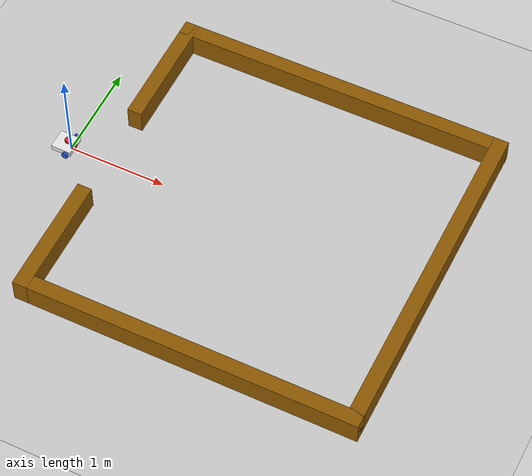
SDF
<sdf version="1.7">
 <world name="default">
  <light name="sun" type="directional">
   <pose>0 0 10 0 -0 0</pose>
   <diffuse>0.8 0.8 0.8 1</diffuse>
   <specular>0.2 0.2 0.2 1</specular>
   <attenuation>
    <range>1000</range>
    <constant>0.9</constant>
    <linear>0.01</linear>
    <quadratic>0.001</quadratic>
   </attenuation>
   <direction>-0.5 0.1 -0.9</direction>
   <spot><inner_angle>0</inner_angle><outer_angle>0</outer_angle><falloff>0</falloff></spot>
  </light>
  <model name="ground_plane">
   <static>1</static>
   <link name="link">
    <collision name="collision">
     <geometry><plane><normal>0 0 1</normal><size>100 100</size></plane></geometry>
     <surface><friction><ode><mu>100</mu><mu2>50</mu2></ode></friction></surface>
    </collision>
    <visual name="visual">
     <cast_shadows>0</cast_shadows>
     <geometry><plane><normal>0 0 1</normal><size>100 100</size></plane></geometry>
     <material>
      <script><uri>file://media/materials/scripts/gazebo.material</uri><name>Gazebo/Grey</name></script>
     </material>
    </visual>
   </link>
  </model>
  <gravity>0 0 -9.8</gravity>
  <magnetic_field>6e-06 2.3e-05 -4.2e-05</magnetic_field>
  <atmosphere type="adiabatic"/>
  <physics type="ode">
   <max_step_size>0.001</max_step_size>
   <real_time_factor>1</real_time_factor>
   <real_time_update_rate>1000</real_time_update_rate>
  </physics>
  <scene><ambient>0.4 0.4 0.4 1</ambient><background>0.7 0.7 0.7 1</background><shadows>1</shadows></scene>
  <spherical_coordinates>
   <surface_model>EARTH_WGS84</surface_model>
   <latitude_deg>0</latitude_deg>
   <longitude_deg>0</longitude_deg>
   <elevation>0</elevation>
   <heading_deg>0</heading_deg>
  </spherical_coordinates>
  <model name="my_bot">
   <link name="base_link">
    <inertial>
     <pose>-0.033021 0 0.067536 0 -0 0</pose>
     <mass>0.7</mass>
     <inertia>
      <ixx>0.00531008</ixx>
      <ixy>0</ixy>
      <ixz>-0.000834607</ixz>
      <iyy>0.006723</iyy>
      <iyz>0</iyz>
      <izz>0.00898587</izz>
     </inertia>
    </inertial>
    <collision name="base_link_fixed_joint_lump__chassis_collision">
     <pose>-0.0584 0 0.02725 0 -0 0</pose>
     <geometry><box><size>0.208 0.208 0.0545</size></box></geometry>
    </collision>
    <collision name="base_link_fixed_joint_lump__castor_wheel_collision_1">
     <pose>-0.1424 0 0 0 -0 0</pose>
     <geometry><sphere><radius>0.0171</radius></sphere></geometry>
     <surface><friction><ode><mu>0.001</mu><mu2>0.001</mu2></ode></friction></surface>
    </collision>
    <collision name="base_link_fixed_joint_lump__laser_frame_collision_2">
     <pose>-0.02675 0 0.09775 0 -0 3.14159</pose>
     <geometry><cylinder><length>0.0245</length><radius>0.035</radius></cylinder></geometry>
    </collision>
    <visual name="base_link_fixed_joint_lump__chassis_visual">
     <pose>-0.0584 0 0.02725 0 -0 0</pose>
     <geometry><box><size>0.208 0.208 0.0545</size></box></geometry>
     <material>
      <script><name>Gazebo/White</name><uri>file://media/materials/scripts/gazebo.material</uri></script>
     </material>
    </visual>
    <visual name="base_link_fixed_joint_lump__camera_link_visual_1">
     <pose>0.0556 0 0.052 0 -0 0</pose>
     <geometry><box><size>0.01 0.03 0.03</size></box></geometry>
     <material>
      <script><name>Gazebo/Red</name><uri>file://media/materials/scripts/gazebo.material</uri></script>
     </material>
    </visual>
    <visual name="base_link_fixed_joint_lump__castor_wheel_visual_2">
     <pose>-0.1424 0 0 0 -0 0</pose>
     <geometry><sphere><radius>0.0171</radius></sphere></geometry>
     <material>
      <script><name>Gazebo/Black</name><uri>file://media/materials/scripts/gazebo.material</uri></script>
     </material>
    </visual>
    <visual name="base_link_fixed_joint_lump__laser_frame_visual_3">
     <pose>-0.02675 0 0.09775 0 -0 3.14159</pose>
     <geometry><cylinder><length>0.0245</length><radius>0.035</radius></cylinder></geometry>
     <material>
      <script><name>Gazebo/Red</name><uri>file://media/materials/scripts/gazebo.material</uri></script>
     </material>
    </visual>
    <sensor name="camera" type="camera">
     <visualize>1</visualize>
     <update_rate>10</update_rate>
     <camera>
      <horizontal_fov>1.089</horizontal_fov>
      <image><format>R8G8B8</format><width>640</width><height>480</height></image>
      <clip><near>0.05</near><far>8</far></clip>
     </camera>
     <plugin name="camera_controller" filename="libgazebo_ros_camera.so">
      <frame_name>camera_link_optical</frame_name>
     </plugin>
     <pose>0.0556 0 0.052 0 -0 0</pose>
    </sensor>
    <sensor name="laser" type="ray">
     <visualize>0</visualize>
     <update_rate>10</update_rate>
     <ray>
      <scan>
       <horizontal>
        <samples>360</samples>
        <min_angle>-3.14</min_angle>
        <max_angle>3.14</max_angle>
        <resolution>1</resolution>
       </horizontal>
       <vertical><samples>1</samples><min_angle>0</min_angle><max_angle>0</max_angle></vertical>
      </scan>
      <range><min>0.3</min><max>12</max></range>
     </ray>
     <plugin name="laser_controller" filename="libgazebo_ros_ray_sensor.so">
      <ros><argument>~/out:=scan</argument></ros>
      <output_type>sensor_msgs/LaserScan</output_type>
      <frame_name>laser_frame</frame_name>
     </plugin>
     <pose>-0.02675 0 0.09775 0 -0 3.14159</pose>
    </sensor>
   </link>
   <joint name="left_wheel_joint" type="revolute">
    <pose relative_to="base_link">0 0.12315 0.019 -1.5708 0 0</pose>
    <parent>base_link</parent>
    <child>left_wheel</child>
    <axis>
     <xyz>0 0 1</xyz>
     <limit><lower>-1e+16</lower><upper>1e+16</upper></limit>
     <dynamics><spring_reference>0</spring_reference><spring_stiffness>0</spring_stiffness></dynamics>
    </axis>
   </joint>
   <link name="left_wheel">
    <pose relative_to="left_wheel_joint">0 0 0 0 -0 0</pose>
    <inertial>
     <mass>0.1</mass>
     <inertia>
      <ixx>3.42488e-05</ixx>
      <ixy>0</ixy>
      <ixz>0</ixz>
      <iyy>3.42488e-05</iyy>
      <iyz>0</iyz>
      <izz>5.66161e-05</izz>
     </inertia>
    </inertial>
    <collision name="left_wheel_collision">
     <geometry><cylinder><length>0.0267</length><radius>0.03365</radius></cylinder></geometry>
    </collision>
    <visual name="left_wheel_visual">
     <geometry><cylinder><length>0.0267</length><radius>0.03365</radius></cylinder></geometry>
     <material>
      <script><name>Gazebo/Blue</name><uri>file://media/materials/scripts/gazebo.material</uri></script>
     </material>
    </visual>
   </link>
   <joint name="right_wheel_joint" type="revolute">
    <pose relative_to="base_link">0 -0.12315 0.019 1.5708 -0 0</pose>
    <parent>base_link</parent>
    <child>right_wheel</child>
    <axis>
     <xyz>0 0 -1</xyz>
     <limit><lower>-1e+16</lower><upper>1e+16</upper></limit>
     <dynamics><spring_reference>0</spring_reference><spring_stiffness>0</spring_stiffness></dynamics>
    </axis>
   </joint>
   <link name="right_wheel">
    <pose relative_to="right_wheel_joint">0 0 0 0 -0 0</pose>
    <inertial>
     <mass>0.1</mass>
     <inertia>
      <ixx>3.42488e-05</ixx>
      <ixy>0</ixy>
      <ixz>0</ixz>
      <iyy>3.42488e-05</iyy>
      <iyz>0</iyz>
      <izz>5.66161e-05</izz>
     </inertia>
    </inertial>
    <collision name="right_wheel_collision">
     <geometry><cylinder><length>0.0267</length><radius>0.03365</radius></cylinder></geometry>
    </collision>
    <visual name="right_wheel_visual">
     <geometry><cylinder><length>0.0267</length><radius>0.03365</radius></cylinder></geometry>
     <material>
      <script><name>Gazebo/Blue</name><uri>file://media/materials/scripts/gazebo.material</uri></script>
     </material>
    </visual>
   </link>
   <static>0</static>
   <plugin name="diff_drive" filename="libgazebo_ros_diff_drive.so">
    <left_joint>left_wheel_joint</left_joint>
    <right_joint>right_wheel_joint</right_joint>
    <wheel_separation>0.2463</wheel_separation>
    <wheel_diameter>0.0673</wheel_diameter>
    <max_wheel_torque>200</max_wheel_torque>
    <max_wheel_acceleration>10.0</max_wheel_acceleration>
    <odometry_frame>odom</odometry_frame>
    <robot_base_frame>base_link</robot_base_frame>
    <publish_odom>1</publish_odom>
    <publish_odom_tf>1</publish_odom_tf>
    <publish_wheel_tf>1</publish_wheel_tf>
   </plugin>
   <pose>-0.006056 0.001837 0.014653 -5e-06 0.017182 -0.005254</pose>
  </model>
  <model name="Perimeter">
   <link name="Wall_4">
    <pose>-1.675 -0.6125 0 0 0 -1.5708</pose>
    <inertial>
     <mass>1</mass>
     <inertia><ixx>1</ixx><ixy>0</ixy><ixz>0</ixz><iyy>1</iyy><iyz>0</iyz><izz>1</izz></inertia>
    </inertial>
    <visual name="Wall_4_Visual">
     <geometry><box><size>3.5 0.15 0.5</size></box></geometry>
     <material>
      <script><uri>file://media/materials/scripts/gazebo.material</uri><name>Gazebo/Grey</name></script>
      <ambient>0.561 0.349 0.008 1</ambient>
      <shader type="pixel"><normal_map>__default__</normal_map></shader>
      <diffuse>0.7 0.7 0.7 1</diffuse>
      <specular>0.01 0.01 0.01 1</specular>
      <emissive>0 0 0 1</emissive>
     </material>
     <meta><layer>0</layer></meta>
    </visual>
    <collision name="Wall_4_Collision">
     <geometry><box><size>3.5 0.15 0.5</size></box></geometry>
     <surface>
      <friction>
       <ode><mu>1</mu><mu2>1</mu2><fdir1>0 0 0</fdir1><slip1>0</slip1><slip2>0</slip2></ode>
       <torsional>
        <coefficient>1</coefficient>
        <patch_radius>0</patch_radius>
        <surface_radius>0</surface_radius>
        <use_patch_radius>1</use_patch_radius>
        <ode><slip>0</slip></ode>
       </torsional>
      </friction>
      <bounce><restitution_coefficient>0</restitution_coefficient><threshold>1e+06</threshold></bounce>
      <contact>
       <collide_without_contact>0</collide_without_contact>
       <collide_without_contact_bitmask>1</collide_without_contact_bitmask>
       <collide_bitmask>1</collide_bitmask>
       <ode>
        <soft_cfm>0</soft_cfm>
        <soft_erp>0.2</soft_erp>
        <kp>1e+13</kp>
        <kd>1</kd>
        <max_vel>0.01</max_vel>
        <min_depth>0</min_depth>
       </ode>
       <bullet>
        <split_impulse>1</split_impulse>
        <split_impulse_penetration_threshold>-0.01</split_impulse_penetration_threshold>
        <soft_cfm>0</soft_cfm>
        <soft_erp>0.2</soft_erp>
        <kp>1e+13</kp>
        <kd>1</kd>
       </bullet>
      </contact>
     </surface>
    </collision>
   </link>
   <link name="Wall_5">
    <pose>0 -2.2875 0 0 -0 0</pose>
    <inertial>
     <mass>1</mass>
     <inertia><ixx>1</ixx><ixy>0</ixy><ixz>0</ixz><iyy>1</iyy><iyz>0</iyz><izz>1</izz></inertia>
    </inertial>
    <visual name="Wall_5_Visual">
     <geometry><box><size>3.5 0.15 0.5</size></box></geometry>
     <material>
      <script><uri>file://media/materials/scripts/gazebo.material</uri><name>Gazebo/Grey</name></script>
      <ambient>0.561 0.349 0.008 1</ambient>
      <shader type="pixel"><normal_map>__default__</normal_map></shader>
      <diffuse>0.7 0.7 0.7 1</diffuse>
      <specular>0.01 0.01 0.01 1</specular>
      <emissive>0 0 0 1</emissive>
     </material>
     <meta><layer>0</layer></meta>
    </visual>
    <collision name="Wall_5_Collision">
     <geometry><box><size>3.5 0.15 0.5</size></box></geometry>
     <surface>
      <friction>
       <ode><mu>1</mu><mu2>1</mu2><fdir1>0 0 0</fdir1><slip1>0</slip1><slip2>0</slip2></ode>
       <torsional>
        <coefficient>1</coefficient>
        <patch_radius>0</patch_radius>
        <surface_radius>0</surface_radius>
        <use_patch_radius>1</use_patch_radius>
        <ode><slip>0</slip></ode>
       </torsional>
      </friction>
      <bounce><restitution_coefficient>0</restitution_coefficient><threshold>1e+06</threshold></bounce>
      <contact>
       <collide_without_contact>0</collide_without_contact>
       <collide_without_contact_bitmask>1</collide_without_contact_bitmask>
       <collide_bitmask>1</collide_bitmask>
       <ode>
        <soft_cfm>0</soft_cfm>
        <soft_erp>0.2</soft_erp>
        <kp>1e+13</kp>
        <kd>1</kd>
        <max_vel>0.01</max_vel>
        <min_depth>0</min_depth>
       </ode>
       <bullet>
        <split_impulse>1</split_impulse>
        <split_impulse_penetration_threshold>-0.01</split_impulse_penetration_threshold>
        <soft_cfm>0</soft_cfm>
        <soft_erp>0.2</soft_erp>
        <kp>1e+13</kp>
        <kd>1</kd>
       </bullet>
      </contact>
     </surface>
    </collision>
   </link>
   <link name="Wall_6">
    <pose>1.675 -0.6125 0 0 -0 1.5708</pose>
    <inertial>
     <mass>1</mass>
     <inertia><ixx>1</ixx><ixy>0</ixy><ixz>0</ixz><iyy>1</iyy><iyz>0</iyz><izz>1</izz></inertia>
    </inertial>
    <visual name="Wall_6_Visual">
     <geometry><box><size>3.5 0.15 0.5</size></box></geometry>
     <material>
      <script><uri>file://media/materials/scripts/gazebo.material</uri><name>Gazebo/Grey</name></script>
      <ambient>0.561 0.349 0.008 1</ambient>
      <shader type="pixel"><normal_map>__default__</normal_map></shader>
      <diffuse>0.7 0.7 0.7 1</diffuse>
      <specular>0.01 0.01 0.01 1</specular>
      <emissive>0 0 0 1</emissive>
     </material>
     <meta><layer>0</layer></meta>
    </visual>
    <collision name="Wall_6_Collision">
     <geometry><box><size>3.5 0.15 0.5</size></box></geometry>
     <surface>
      <friction>
       <ode><mu>1</mu><mu2>1</mu2><fdir1>0 0 0</fdir1><slip1>0</slip1><slip2>0</slip2></ode>
       <torsional>
        <coefficient>1</coefficient>
        <patch_radius>0</patch_radius>
        <surface_radius>0</surface_radius>
        <use_patch_radius>1</use_patch_radius>
        <ode><slip>0</slip></ode>
       </torsional>
      </friction>
      <bounce><restitution_coefficient>0</restitution_coefficient><threshold>1e+06</threshold></bounce>
      <contact>
       <collide_without_contact>0</collide_without_contact>
       <collide_without_contact_bitmask>1</collide_without_contact_bitmask>
       <collide_bitmask>1</collide_bitmask>
       <ode>
        <soft_cfm>0</soft_cfm>
        <soft_erp>0.2</soft_erp>
        <kp>1e+13</kp>
        <kd>1</kd>
        <max_vel>0.01</max_vel>
        <min_depth>0</min_depth>
       </ode>
       <bullet>
        <split_impulse>1</split_impulse>
        <split_impulse_penetration_threshold>-0.01</split_impulse_penetration_threshold>
        <soft_cfm>0</soft_cfm>
        <soft_erp>0.2</soft_erp>
        <kp>1e+13</kp>
        <kd>1</kd>
       </bullet>
      </contact>
     </surface>
    </collision>
   </link>
   <link name="Wall_7">
    <pose>1.125 1.0625 0 0 -0 3.14159</pose>
    <inertial>
     <mass>1</mass>
     <inertia><ixx>1</ixx><ixy>0</ixy><ixz>0</ixz><iyy>1</iyy><iyz>0</iyz><izz>1</izz></inertia>
    </inertial>
    <visual name="Wall_7_Visual">
     <geometry><box><size>1.25 0.15 0.5</size></box></geometry>
     <material>
      <script><uri>file://media/materials/scripts/gazebo.material</uri><name>Gazebo/Grey</name></script>
      <ambient>0.561 0.349 0.008 1</ambient>
      <shader type="pixel"><normal_map>__default__</normal_map></shader>
      <diffuse>0.7 0.7 0.7 1</diffuse>
      <specular>0.01 0.01 0.01 1</specular>
      <emissive>0 0 0 1</emissive>
     </material>
     <meta><layer>0</layer></meta>
    </visual>
    <collision name="Wall_7_Collision">
     <geometry><box><size>1.25 0.15 0.5</size></box></geometry>
     <surface>
      <friction>
       <ode><mu>1</mu><mu2>1</mu2><fdir1>0 0 0</fdir1><slip1>0</slip1><slip2>0</slip2></ode>
       <torsional>
        <coefficient>1</coefficient>
        <patch_radius>0</patch_radius>
        <surface_radius>0</surface_radius>
        <use_patch_radius>1</use_patch_radius>
        <ode><slip>0</slip></ode>
       </torsional>
      </friction>
      <bounce><restitution_coefficient>0</restitution_coefficient><threshold>1e+06</threshold></bounce>
      <contact>
       <collide_without_contact>0</collide_without_contact>
       <collide_without_contact_bitmask>1</collide_without_contact_bitmask>
       <collide_bitmask>1</collide_bitmask>
       <ode>
        <soft_cfm>0</soft_cfm>
        <soft_erp>0.2</soft_erp>
        <kp>1e+13</kp>
        <kd>1</kd>
        <max_vel>0.01</max_vel>
        <min_depth>0</min_depth>
       </ode>
       <bullet>
        <split_impulse>1</split_impulse>
        <split_impulse_penetration_threshold>-0.01</split_impulse_penetration_threshold>
        <soft_cfm>0</soft_cfm>
        <soft_erp>0.2</soft_erp>
        <kp>1e+13</kp>
        <kd>1</kd>
       </bullet>
      </contact>
     </surface>
    </collision>
   </link>
   <link name="Wall_9">
    <pose>-1.125 1.0625 0 0 -0 0</pose>
    <inertial>
     <mass>1</mass>
     <inertia><ixx>1</ixx><ixy>0</ixy><ixz>0</ixz><iyy>1</iyy><iyz>0</iyz><izz>1</izz></inertia>
    </inertial>
    <visual name="Wall_9_Visual">
     <geometry><box><size>1.25 0.15 0.5</size></box></geometry>
     <material>
      <script><uri>file://media/materials/scripts/gazebo.material</uri><name>Gazebo/Grey</name></script>
      <ambient>0.561 0.349 0.008 1</ambient>
      <shader type="pixel"><normal_map>__default__</normal_map></shader>
      <diffuse>0.7 0.7 0.7 1</diffuse>
      <specular>0.01 0.01 0.01 1</specular>
      <emissive>0 0 0 1</emissive>
     </material>
     <meta><layer>0</layer></meta>
    </visual>
    <collision name="Wall_9_Collision">
     <geometry><box><size>1.25 0.15 0.5</size></box></geometry>
     <surface>
      <friction>
       <ode><mu>1</mu><mu2>1</mu2><fdir1>0 0 0</fdir1><slip1>0</slip1><slip2>0</slip2></ode>
       <torsional>
        <coefficient>1</coefficient>
        <patch_radius>0</patch_radius>
        <surface_radius>0</surface_radius>
        <use_patch_radius>1</use_patch_radius>
        <ode><slip>0</slip></ode>
       </torsional>
      </friction>
      <bounce><restitution_coefficient>0</restitution_coefficient><threshold>1e+06</threshold></bounce>
      <contact>
       <collide_without_contact>0</collide_without_contact>
       <collide_without_contact_bitmask>1</collide_without_contact_bitmask>
       <collide_bitmask>1</collide_bitmask>
       <ode>
        <soft_cfm>0</soft_cfm>
        <soft_erp>0.2</soft_erp>
        <kp>1e+13</kp>
        <kd>1</kd>
        <max_vel>0.01</max_vel>
        <min_depth>0</min_depth>
       </ode>
       <bullet>
        <split_impulse>1</split_impulse>
        <split_impulse_penetration_threshold>-0.01</split_impulse_penetration_threshold>
        <soft_cfm>0</soft_cfm>
        <soft_erp>0.2</soft_erp>
        <kp>1e+13</kp>
        <kd>1</kd>
       </bullet>
      </contact>
     </surface>
    </collision>
   </link>
   <static>1</static>
   <pose>1.5 0 0 0 -0 1.5708</pose>
  </model>
 </world>
</sdf>
